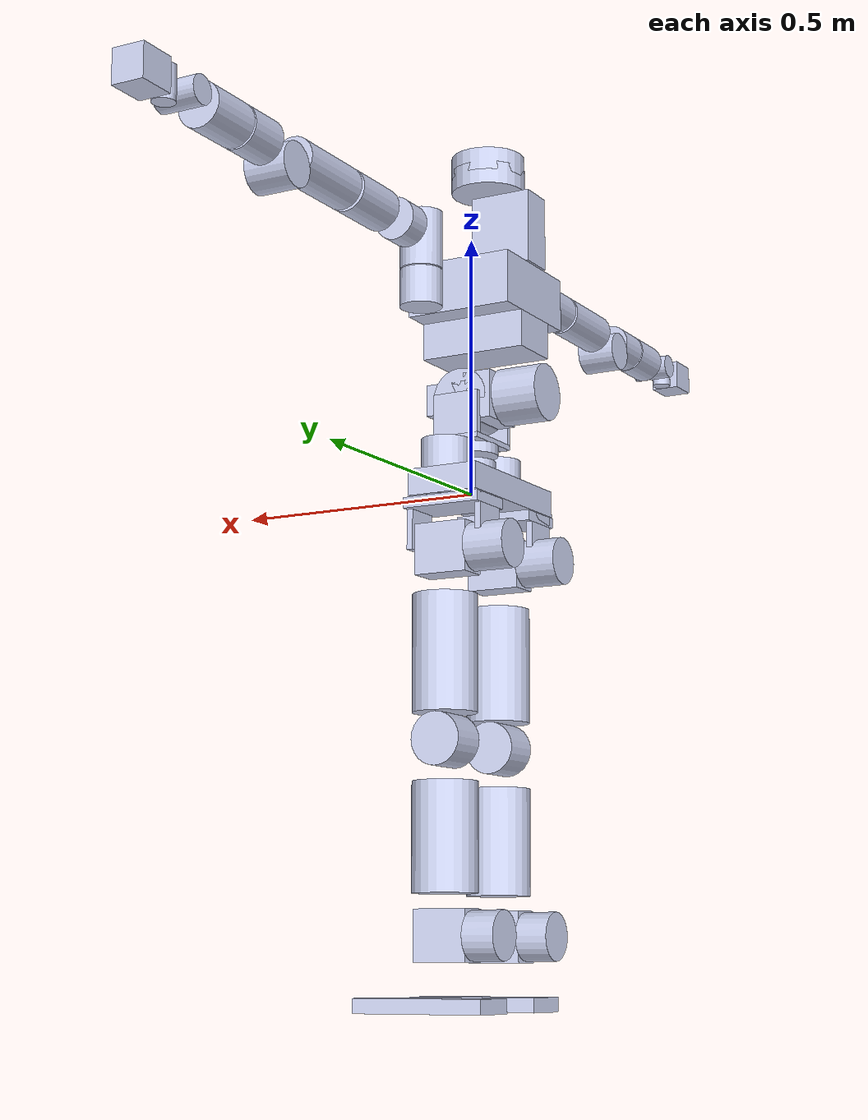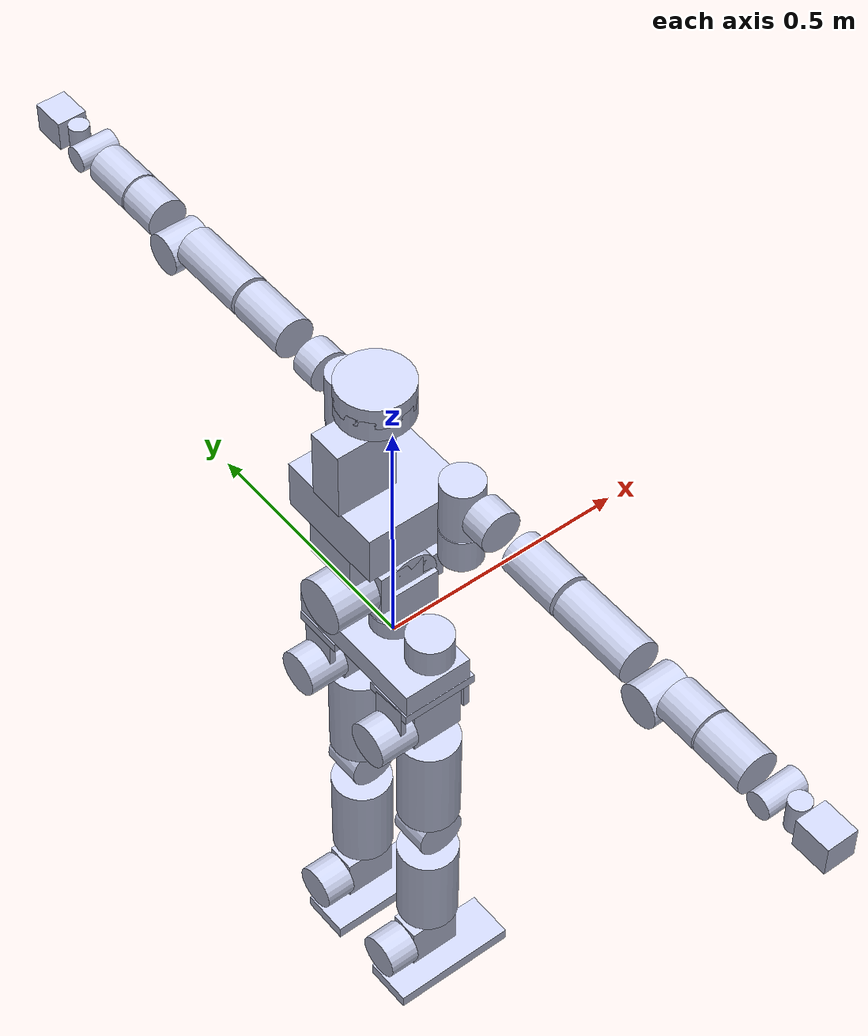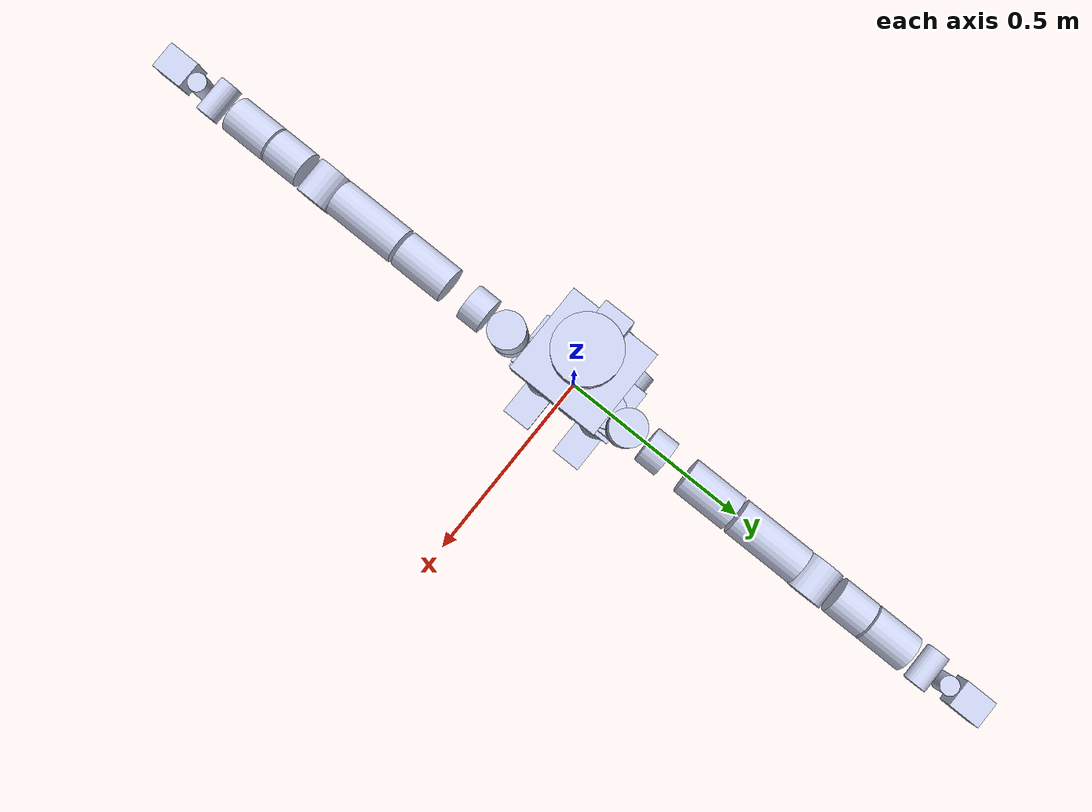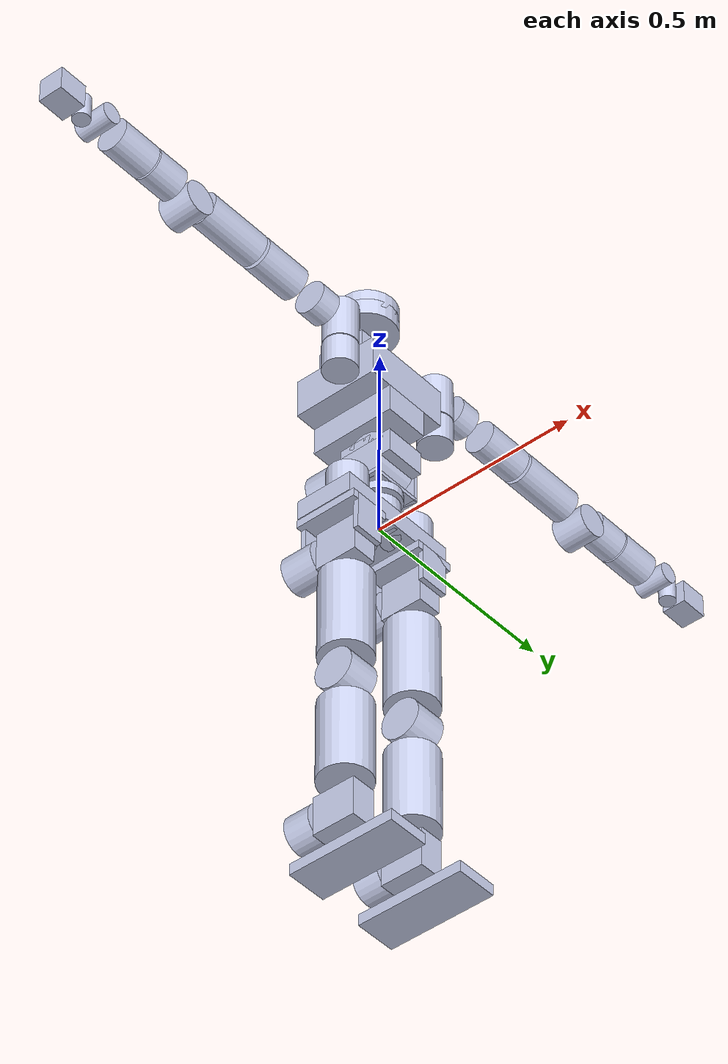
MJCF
<mujoco model="dyros_tocabi">
    <compiler angle="radian" meshdir="../meshes/" />
    <size njmax="500" nconmax="100" />
    <worldbody>
        <geom size="0.045 0.044" pos="0 0 0.019" type="cylinder" rgba="0.79216 0.81961 0.93333 1" />
        <geom size="0.045 0.055" pos="0 0.1025 0.03" type="cylinder" rgba="0.79216 0.81961 0.93333 1" />
        <geom size="0.045 0.055" pos="0 -0.1025 0.03" type="cylinder" rgba="0.79216 0.81961 0.93333 1" />
        <geom size="0.0705 0.1525 0.025" pos="-0.0205 0 0" type="box" rgba="0.79216 0.81961 0.93333 1" />
        <body name="R_HipRoll_Link" pos="0 -0.1025 -0.1225">
            <inertial pos="-0.06477 0 0.05149" quat="-4.55125e-06 0.706109 4.5641e-06 0.708103" mass="2.679" diaginertia="0.114073 0.114073 0.114073" />
            <joint name="R_HipRoll_Joint" pos="0 0 0" axis="0 0 1" limited="true" range="-3.14 3.14" damping="5" />
            <geom size="0.045 0.04" pos="-0.1 0 0" quat="0.707107 0 0.707107 0" type="cylinder" rgba="0.79216 0.81961 0.93333 1" />
            <geom size="0.077 0.05 0.01" pos="-0.016 0 0.085" type="box" rgba="0.79216 0.81961 0.93333 1" />
            <geom size="0.006 0.036 0.0475" pos="0.055 0 0.0475" type="box" rgba="0.79216 0.81961 0.93333 1" />
            <geom size="0.006 0.036 0.0475" pos="-0.087 0 0.0475" type="box" rgba="0.79216 0.81961 0.93333 1" />
            <body name="R_HipCenter_Link" pos="0 0 0">
                <inertial pos="-0.04801 -0.0022 2e-05" quat="0.999982 -0.00595644 4.6683e-06 -2.7807e-08" mass="2.67" diaginertia="0.124407 0.124407 0.124407" />
                <joint name="R_HipCenter_Joint" pos="0 0 0" axis="1 0 0" limited="true" range="-3.14 3.14" damping="5" />
                <geom size="0.05225 0.03 0.0475" pos="-0.0045 0 0" type="box" rgba="0.79216 0.81961 0.93333 1" />
                <body name="R_Thigh_Link" pos="0 0 0">
                    <inertial pos="-0.00042 -0.00032 -0.18904" quat="0.707068 0.00145661 -0.000977354 0.707144" mass="5.366" diaginertia="0.339107 0.339107 0.339107" />
                    <joint name="R_Thigh_Joint" pos="0 0 0" axis="0 1 0" limited="true" range="-3.14 3.14" damping="5" />
                    <geom size="0.049 0.038815" pos="0 0 -0.35" quat="0.707107 0.707107 0 0" type="cylinder" rgba="0.79216 0.81961 0.93333 1" />
                    <geom size="0.06 0.10875" pos="0 0 -0.1923" type="cylinder" rgba="0.79216 0.81961 0.93333 1" />
                    <body name="R_Knee_Link" pos="0 0 -0.35">
                        <inertial pos="0.00429 0.00214 -0.1428" quat="0.707067 0.00548297 0.00738884 0.707087" mass="3.883" diaginertia="0.23895 0.23895 0.23895" />
                        <joint name="R_Knee_Joint" pos="0 0 0" axis="0 1 0" limited="true" range="-3.14 3.14" damping="5" />
                        <geom size="0.06 0.1" pos="0 0 -0.175" type="cylinder" rgba="0.79216 0.81961 0.93333 1" />
                        <body name="R_AnkleCenter_Link" pos="0 0 -0.35">
                            <inertial pos="-0.00419 -0.0018 -0.0003" quat="0.498858 0.50114 0.501134 0.498863" mass="2.51" diaginertia="0.139901 0.139901 0.139901" />
                            <joint name="R_AnkleCenter_Joint" pos="0 0 0" axis="0 1 0" limited="true" range="-3.14 3.14" damping="5" />
                            <geom size="0.05225 0.03 0.0475" pos="-0.0045 0 0" type="box" rgba="0.79216 0.81961 0.93333 1" />
                            <body name="R_AnkleRoll_Link" pos="0 0 0">
                                <inertial pos="-0.00802 0 -0.08535" quat="0.999815 -0.000353889 0.0192239 9.30274e-05" mass="3.464" diaginertia="0.07616 0.07616 0.07616" />
                                <joint name="R_AnkleRoll_Joint" pos="0 0 0" axis="1 0 0" limited="true" range="-3.14 3.14" damping="5" />
                                <geom size="0.13 0.05 0.0135" pos="0.0317 0 -0.1233" type="box" rgba="0.79216 0.81961 0.93333 1" />
                                <geom size="0.045 0.03125" pos="-0.08875 0 0" quat="0.707107 0 -0.707107 0" type="cylinder" rgba="0.79216 0.81961 0.93333 1" />
                            </body>
                        </body>
                    </body>
                </body>
            </body>
        </body>
        <body name="L_HipRoll_Link" pos="0 0.1025 -0.1225">
            <inertial pos="-0.06477 0 0.05149" quat="-4.55125e-06 0.706109 4.5641e-06 0.708103" mass="2.679" diaginertia="0.114073 0.114073 0.114073" />
            <joint name="L_HipRoll_Joint" pos="0 0 0" axis="0 0 1" limited="true" range="-3.14 3.14" damping="5" />
            <geom size="0.045 0.04" pos="-0.1 0 0" quat="0.707107 0 0.707107 0" type="cylinder" rgba="0.79216 0.81961 0.93333 1" />
            <geom size="0.077 0.05 0.01" pos="-0.016 0 0.085" type="box" rgba="0.79216 0.81961 0.93333 1" />
            <geom size="0.006 0.036 0.0475" pos="0.055 0 0.0475" type="box" rgba="0.79216 0.81961 0.93333 1" />
            <geom size="0.006 0.036 0.0475" pos="-0.087 0 0.0475" type="box" rgba="0.79216 0.81961 0.93333 1" />
            <body name="L_HipCenter_Link" pos="0 0 0">
                <inertial pos="-0.04801 0.0022 2e-05" quat="0.999982 -0.00595644 4.6683e-06 -2.7807e-08" mass="2.67" diaginertia="0.124407 0.124407 0.124407" />
                <joint name="L_HipCenter_Joint" pos="0 0 0" axis="1 0 0" limited="true" range="-3.14 3.14" damping="5" />
                <geom size="0.05225 0.03 0.0475" pos="-0.0045 0 0" type="box" rgba="0.79216 0.81961 0.93333 1" />
                <body name="L_Thigh_Link" pos="0 0 0">
                    <inertial pos="-0.00042 0.00032 -0.18904" quat="0.707068 0.00145661 -0.000977354 0.707144" mass="5.366" diaginertia="0.339107 0.339107 0.339107" />
                    <joint name="L_Thigh_Joint" pos="0 0 0" axis="0 1 0" limited="true" range="-3.14 3.14" damping="5" />
                    <geom size="0.049 0.038815" pos="0 0 -0.35" quat="0.707107 0.707107 0 0" type="cylinder" rgba="0.79216 0.81961 0.93333 1" />
                    <geom size="0.06 0.10875" pos="0 0 -0.1923" type="cylinder" rgba="0.79216 0.81961 0.93333 1" />
                    <body name="L_Knee_Link" pos="0 0 -0.35">
                        <inertial pos="0.00429 -0.00214 -0.1428" quat="0.707067 0.00548297 0.00738884 0.707087" mass="3.883" diaginertia="0.23895 0.23895 0.23895" />
                        <joint name="L_Knee_Joint" pos="0 0 0" axis="0 1 0" limited="true" range="-3.14 3.14" damping="5" />
                        <geom size="0.06 0.1" pos="0 0 -0.175" type="cylinder" rgba="0.79216 0.81961 0.93333 1" />
                        <body name="L_AnkleCenter_Link" pos="0 0 -0.35">
                            <inertial pos="-0.00419 0.0018 -0.0003" quat="0.498858 0.50114 0.501134 0.498863" mass="2.51" diaginertia="0.139901 0.139901 0.139901" />
                            <joint name="L_AnkleCenter_Joint" pos="0 0 0" axis="0 1 0" limited="true" range="-3.14 3.14" damping="5" />
                            <geom size="0.05225 0.03 0.0475" pos="-0.0045 0 0" type="box" rgba="0.79216 0.81961 0.93333 1" />
                            <body name="L_AnkleRoll_Link" pos="0 0 0">
                                <inertial pos="-0.00802 0 -0.08535" quat="0.999815 -0.000353889 0.0192239 9.30274e-05" mass="3.464" diaginertia="0.07616 0.07616 0.07616" />
                                <joint name="L_AnkleRoll_Joint" pos="0 0 0" axis="1 0 0" limited="true" range="-3.14 3.14" damping="5" />
                                <geom size="0.13 0.05 0.0135" pos="0.0317 0 -0.1233" type="box" rgba="0.79216 0.81961 0.93333 1" />
                                <geom size="0.045 0.03125" pos="-0.08875 0 0" quat="0.707107 0 -0.707107 0" type="cylinder" rgba="0.79216 0.81961 0.93333 1" />
                            </body>
                        </body>
                    </body>
                </body>
            </body>
        </body>
        <body name="Waist1_Link" pos="0 0 0.18">
            <inertial pos="0 0 -0.04182" quat="0.707107 0.707107 0 0" mass="0.74235" diaginertia="0.00325468 0.00270188 0.00165546" />
            <joint name="Waist1_Joint" pos="0 0 0" axis="0 0 1" limited="true" range="-2.094 2.094" damping="5" />
            <geom size="0.05 0.01" pos="0 0 -0.096" type="cylinder" rgba="0.792157 0.819608 0.933333 1" />
            <geom size="0.047 0.065 0.005" pos="0 0 -0.081" type="box" rgba="0.792157 0.819608 0.933333 1" />
            <geom size="0.047 0.005 0.0455" pos="0 0.06 -0.0405" type="box" rgba="0.792157 0.819608 0.933333 1" />
            <geom size="0.047 0.005 0.0455" pos="0 -0.06 -0.0405" type="box" rgba="0.792157 0.819608 0.933333 1" />
            <body name="Waist2_Link" pos="0 0 0">
                <inertial pos="-0.00065 0 1e-05" quat="0 0.707107 0 0.707107" mass="3.27104" diaginertia="0.00602216 0.0049746 0.00462286" />
                <joint name="Waist2_Joint" pos="0 0 0" axis="0 1 0" limited="true" range="-2.094 2.094" damping="5" />
                <geom size="0.055 0.05" quat="0.707107 0.707107 0 0" type="cylinder" rgba="0.792157 0.819608 0.933333 1" />
                <geom size="0.05 0.05 0.03" pos="0.02 0 0" type="box" rgba="0.792157 0.819608 0.933333 1" />
                <geom size="0.045 0.05 0.0455" pos="-0.02 0 0" type="box" rgba="0.792157 0.819608 0.933333 1" />
                <body name="Upperbody_Link" pos="0 0 0">
                    <inertial pos="-0.04733 0 0.16266" quat="0.991857 0 -0.127356 0" mass="16.4339" diaginertia="0.274087 0.242243 0.173295" />
                    <joint name="Upperbody_Joint" pos="0 0 0" axis="-1 0 0" limited="true" range="-2.094 2.094" damping="5" />
                    <geom size="0.105 0.11 0.05" pos="-0.03 0 0.2" type="box" rgba="0.792157 0.819608 0.933333 1" />
                    <geom size="0.105 0.055 0.035" pos="-0.03 0 0.115" type="box" rgba="0.792157 0.819608 0.933333 1" />
                    <geom size="0.06 0.035 0.07" pos="-0.08 0 0.32" type="box" rgba="0.792157 0.819608 0.933333 1" />
                    <geom size="0.054 0.045" pos="-0.115 0 0" quat="0.707107 0 0.707107 0" type="cylinder" rgba="0.792157 0.819608 0.933333 1" />
                    <geom size="0.04 0.035" pos="0.023 0.154 0.185" type="cylinder" rgba="0.792157 0.819608 0.933333 1" />
                    <geom size="0.04 0.035" pos="0.023 -0.154 0.185" type="cylinder" rgba="0.792157 0.819608 0.933333 1" />
                    <body name="R_Shoulder1_Link" pos="0.023 -0.154 0.2275">
                        <inertial pos="-3e-05 -0.00397 0.06029" quat="0.678735 -0.0962618 0.0973029 0.721516" mass="1.6762" diaginertia="0.00195894 0.0019255 0.00165624" />
                        <joint name="R_Shoulder1_Joint" pos="0 0 0" axis="0 0 1" limited="true" range="-1.54 2.09" damping="5" />
                        <geom size="0.04 0.055" pos="0 0 0.05" type="cylinder" rgba="0.792157 0.819608 0.933333 1" />
                        <body name="R_Shoulder2_Link" pos="0 -0.0341 0.065">
                            <inertial pos="0.00107 -0.0491 -1e-05" quat="0.51724 0.479014 -0.520322 0.481948" mass="0.4016" diaginertia="0.00106758 0.000992068 0.000622085" />
                            <joint name="R_Shoulder2_Joint" pos="0 0 0" axis="0 -1 0" limited="true" range="-3.14159 3.14159" damping="5" />
                            <geom size="0.04 0.025" pos="0 -0.04 0" quat="0.707107 0.707107 0 0" type="cylinder" rgba="0.792157 0.819608 0.933333 1" />
                            <body name="R_Shoulder3_Link" pos="0 -0.115 0">
                                <inertial pos="0.00262 -0.04826 0.00023" quat="0.708306 0.705235 0.0242641 0.0189048" mass="2.90141" diaginertia="0.00846389 0.00829694 0.00247136" />
                                <joint name="R_Shoulder3_Joint" pos="0 0 0" axis="-1 0 0" limited="true" range="-1.9199 1.9199" damping="5" />
                                <geom size="0.04 0.06" pos="0 -0.06 0" quat="0.707107 0.707107 0 0" type="cylinder" rgba="0.792157 0.819608 0.933333 1" />
                                <body name="R_Armlink_Link" pos="0 -0.1281 0">
                                    <inertial pos="0.01896 -0.11642 -0.0119" quat="0.503607 0.520285 -0.555379 0.408947" mass="0.43517" diaginertia="0.00318243 0.00291909 0.000624466" />
                                    <joint name="R_Armlink_Joint" pos="0 0 0" axis="0 -1 0" limited="true" range="-3.14159 3.14159" damping="5" />
                                    <geom size="0.04 0.08" pos="0 -0.08 0" quat="0.707107 0.707107 0 0" type="cylinder" rgba="0.792157 0.819608 0.933333 1" />
                                    <body name="R_Elbow_Link" pos="0 -0.207 -0.0325">
                                        <inertial pos="-0.00136 -0.05256 0.01764" quat="0.517663 0.708306 -0.39581 0.27141" mass="1.96511" diaginertia="0.0065354 0.00631431 0.00138011" />
                                        <joint name="R_Elbow_Joint" pos="0 0 0" axis="1 0 0" limited="true" range="-2.967 3.14159" damping="5" />
                                        <geom size="0.04 0.04" pos="0 -0.08 0.0325" quat="0.707107 0.707107 0 0" type="cylinder" rgba="0.792157 0.819608 0.933333 1" />
                                        <geom size="0.04 0.04" quat="0.707107 0 0.707107 0" type="cylinder" rgba="0.792157 0.819608 0.933333 1" />
                                        <body name="R_Forearm_Link" pos="0 -0.1244 0.0325">
                                            <inertial pos="0.01426 -0.0767 0.00033" quat="0.55187 0.502809 -0.506596 0.431257" mass="0.30234" diaginertia="0.00126963 0.00106149 0.000388409" />
                                            <joint name="R_Forearm_Joint" pos="0 0 0" axis="0 -1 0" limited="true" range="-3.14159 3.14159" damping="5" />
                                            <geom size="0.04 0.05" pos="0 -0.05 0" quat="0.707107 0.707107 0 0" type="cylinder" rgba="0.792157 0.819608 0.933333 1" />
                                            <geom size="0.025 0.04" pos="0 -0.1451 0" quat="0.707107 0 0.707107 0" type="cylinder" rgba="0.792157 0.819608 0.933333 1" />
                                            <body name="R_Wrist1_Link" pos="0 -0.1451 0">
                                                <inertial pos="-0.00158 -0.02153 3e-05" quat="0.521107 0.474698 -0.525252 0.476676" mass="0.70923" diaginertia="0.00068319 0.000650504 0.000394066" />
                                                <joint name="R_Wrist1_Joint" pos="0 0 0" axis="1 0 0" limited="true" range="-3.14159 3.14159" damping="5" />
                                                <geom size="0.02 0.03" pos="0 -0.046 0" type="cylinder" rgba="0.792157 0.819608 0.933333 1" />
                                                <body name="R_Wrist2_Link" pos="0 -0.046 0">
                                                    <inertial pos="0.00063 -0.0536 0.00178" quat="0.707107 0.707107 0 0" mass="1" diaginertia="0.00086545 0.000820823 0.000696917" />
                                                    <joint name="R_Wrist2_Joint" pos="0 0 0" axis="0 0 1" limited="true" range="-2.094 2.094" damping="5" />
                                                    <geom size="0.03 0.035 0.03" pos="0 -0.057 0" type="box" rgba="0.792157 0.819608 0.933333 1" />
                                                </body>
                                            </body>
                                        </body>
                                    </body>
                                </body>
                            </body>
                        </body>
                    </body>
                    <body name="L_Shoulder1_Link" pos="0.023 0.154 0.2275">
                        <inertial pos="-3e-05 0.00397 0.06029" quat="0.721516 0.0973029 -0.0962618 0.678735" mass="1.6762" diaginertia="0.00195894 0.0019255 0.00165624" />
                        <joint name="L_Shoulder1_Joint" pos="0 0 0" axis="0 0 1" limited="true" range="-2.09 1.54" damping="5" />
                        <geom size="0.04 0.055" pos="0 0 0.05" type="cylinder" rgba="0.792157 0.819608 0.933333 1" />
                        <body name="L_Shoulder2_Link" pos="0 0.0341 0.065">
                            <inertial pos="0.00107 0.0491 -1e-05" quat="0.479014 0.51724 -0.481948 0.520322" mass="0.4016" diaginertia="0.00106758 0.000992068 0.000622085" />
                            <joint name="L_Shoulder2_Joint" pos="0 0 0" axis="0 1 0" limited="true" range="-3.14159 3.14159" damping="5" />
                            <geom size="0.04 0.025" pos="0 0.04 0" quat="0.707107 0.707107 0 0" type="cylinder" rgba="0.792157 0.819608 0.933333 1" />
                            <body name="L_Shoulder3_Link" pos="0 0.115 0">
                                <inertial pos="0.00262 0.04826 0.00023" quat="0.705235 0.708306 -0.0189048 -0.0242641" mass="2.90141" diaginertia="0.00846389 0.00829694 0.00247136" />
                                <joint name="L_Shoulder3_Joint" pos="0 0 0" axis="-1 0 0" limited="true" range="-1.9199 1.9199" damping="5" />
                                <geom size="0.04 0.06" pos="0 0.06 0" quat="0.707107 0.707107 0 0" type="cylinder" rgba="0.792157 0.819608 0.933333 1" />
                                <body name="L_Armlink_Link" pos="0 0.1281 0">
                                    <inertial pos="0.01896 0.11642 -0.0119" quat="0.520285 0.503607 -0.408947 0.555379" mass="0.43517" diaginertia="0.00318243 0.00291909 0.000624466" />
                                    <joint name="L_Armlink_Joint" pos="0 0 0" axis="0 1 0" limited="true" range="-3.14159 3.14159" damping="5" />
                                    <geom size="0.04 0.08" pos="0 0.08 0" quat="0.707107 0.707107 0 0" type="cylinder" rgba="0.792157 0.819608 0.933333 1" />
                                    <body name="L_Elbow_Link" pos="0 0.207 -0.0325">
                                        <inertial pos="-0.00136 0.05256 0.01764" quat="0.708306 0.517663 -0.27141 0.39581" mass="1.96511" diaginertia="0.0065354 0.00631431 0.00138011" />
                                        <joint name="L_Elbow_Joint" pos="0 0 0" axis="1 0 0" limited="true" range="-3.14159 2.8" damping="5" />
                                        <geom size="0.04 0.04" pos="0 0.08 0.0325" quat="0.707107 0.707107 0 0" type="cylinder" rgba="0.792157 0.819608 0.933333 1" />
                                        <geom size="0.04 0.04" quat="0.707107 0 0.707107 0" type="cylinder" rgba="0.792157 0.819608 0.933333 1" />
                                        <body name="L_Forearm_Link" pos="0 0.1244 0.0325">
                                            <inertial pos="0.01426 0.0767 0.00033" quat="0.502809 0.55187 -0.431257 0.506596" mass="0.30234" diaginertia="0.00126963 0.00106149 0.000388409" />
                                            <joint name="L_Forearm_Joint" pos="0 0 0" axis="0 1 0" limited="true" range="-3.14159 3.14159" damping="5" />
                                            <geom size="0.04 0.05" pos="0 0.05 0" quat="0.707107 0.707107 0 0" type="cylinder" rgba="0.792157 0.819608 0.933333 1" />
                                            <geom size="0.025 0.04" pos="0 0.1451 0" quat="0.707107 0 0.707107 0" type="cylinder" rgba="0.792157 0.819608 0.933333 1" />
                                            <body name="L_Wrist1_Link" pos="0 0.1451 0">
                                                <inertial pos="-0.00158 0.02153 3e-05" quat="0.474698 0.521107 -0.476676 0.525252" mass="0.70923" diaginertia="0.00068319 0.000650504 0.000394066" />
                                                <joint name="L_Wrist1_Joint" pos="0 0 0" axis="1 0 0" limited="true" range="-3.14159 3.14159" damping="5" />
                                                <geom size="0.02 0.03" pos="0 0.046 0" type="cylinder" rgba="0.792157 0.819608 0.933333 1" />
                                                <body name="L_Wrist2_Link" pos="0 0.046 0">
                                                    <inertial pos="0.00063 0.0536 0.00178" quat="0.707107 0.707107 0 0" mass="1" diaginertia="0.00086545 0.000820823 0.000696917" />
                                                    <joint name="L_Wrist2_Joint" pos="0 0 0" axis="0 0 1" limited="true" range="-2.094 2.094" damping="5" />
                                                    <geom size="0.03 0.035 0.03" pos="0 0.057 0" type="box" rgba="0.792157 0.819608 0.933333 1" />
                                                </body>
                                            </body>
                                        </body>
                                    </body>
                                </body>
                            </body>
                        </body>
                    </body>
                    <body name="Neck_Link" pos="-0.036 0 0.3795">
                        <inertial pos="0 -0.00363 -0.0023" quat="0.635583 0.664622 -0.284996 0.270349" mass="0.248" diaginertia="5.85426e-05 5.79997e-05 3.64427e-05" />
                        <joint name="Neck_Joint" pos="0 0 0" axis="0 0 1" limited="true" range="-1.54 1.54" damping="5" />
                        <geom size="0.07 0.0215" pos="0 0 0.05" type="cylinder" rgba="0.792157 0.819608 0.933333 1" />
                        <body name="Head_Link" pos="0 0 0.0275">
                            <inertial pos="-0.0036 0.0031 0.1289" quat="0.686556 0.0929367 0.0744515 0.717259" mass="3.46332" diaginertia="0.0215996 0.0203681 0.0145263" />
                            <joint name="Head_Joint" pos="0 0 0" axis="0 1 0" limited="true" range="-1.54 1.54" damping="5" />
                            <geom size="0.07 0.0215" pos="0 0 0.05" type="cylinder" rgba="0.792157 0.819608 0.933333 1" />
                        </body>
                    </body>
                </body>
            </body>
        </body>
    </worldbody>
</mujoco>
